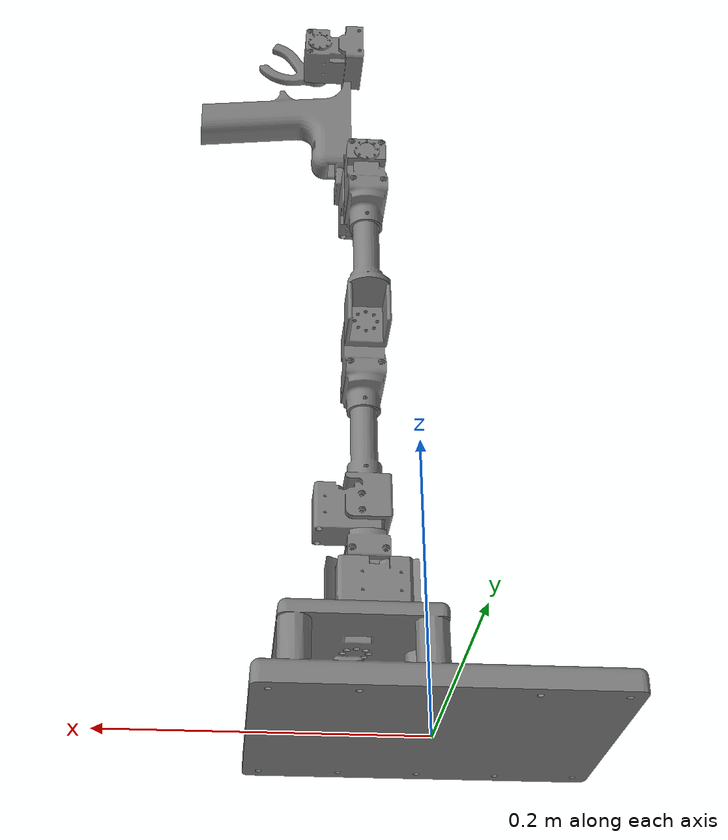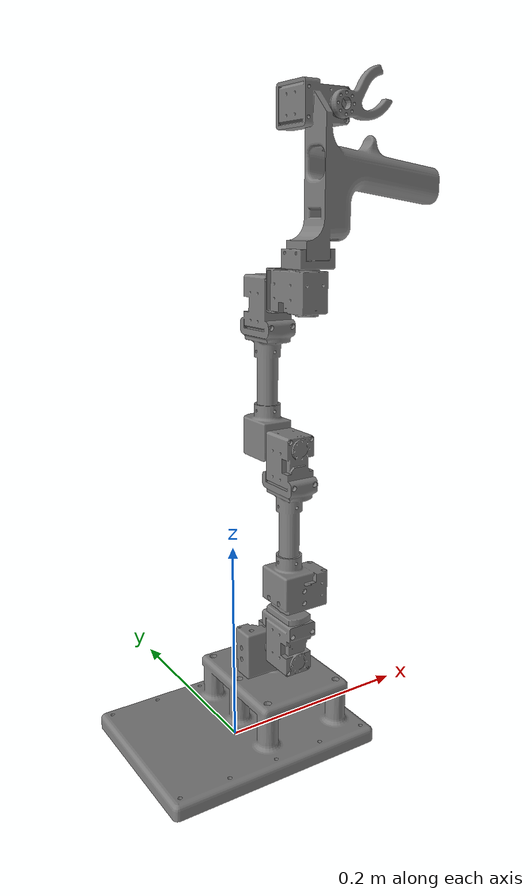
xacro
<?xml version="1.0"?>
<robot name="leader" xmlns:xacro="http://www.ros.org/wiki/xacro">
  <!-- Include the leader arm URDF -->
  <xacro:include filename="$(find leader_description)/urdf/leader.urdf.xacro"/>

  <!-- Launch arguments -->
  <xacro:arg name="port_name" default="/dev/dynamixel_leader"/>

  <xacro:leader />

  <xacro:macro name="leader_system" params="name port_name:=/dev/dynamixel_leader">
    <ros2_control name="${name}" type="system">
      <hardware>
        <plugin>dynamixel_hardware_interface/DynamixelHardware</plugin>
        <param name="port_name">${port_name}</param>
        <param name="baud_rate">1000000</param>
        <param name="error_timeout_ms">500</param>
        <param name="dynamixel_model_folder">/param/dxl_model</param>
        <param name="number_of_joints">7</param>
        <param name="number_of_transmissions">7</param>
        <param name="disable_torque_at_init">true</param>
        <param name="transmission_to_joint_matrix">
          1, 0, 0, 0, 0, 0, 0,
          0, 1, 0, 0, 0, 0, 0,
          0, 0, 1, 0, 0, 0, 0,
          0, 0, 0, 1, 0, 0, 0,
          0, 0, 0, 0, 1, 0, 0,
          0, 0, 0, 0, 0, 1, 0,
          0, 0, 0, 0, 0, 0, 1
        </param>
        <param name="joint_to_transmission_matrix">
          1, 0, 0, 0, 0, 0, 0,
          0, 1, 0, 0, 0, 0, 0,
          0, 0, 1, 0, 0, 0, 0,
          0, 0, 0, 1, 0, 0, 0,
          0, 0, 0, 0, 1, 0, 0,
          0, 0, 0, 0, 0, 1, 0,
          0, 0, 0, 0, 0, 0, 1
        </param>
        <param name="dynamixel_state_pub_msg_name">dynamixel_hardware_interface/dxl_state</param>
        <param name="get_dynamixel_data_srv_name">dynamixel_hardware_interface/get_dxl_data</param>
        <param name="set_dynamixel_data_srv_name">dynamixel_hardware_interface/set_dxl_data</param>
        <param name="reboot_dxl_srv_name">dynamixel_hardware_interface/reboot_dxl</param>
        <param name="set_dxl_torque_srv_name">dynamixel_hardware_interface/set_dxl_torque</param>
      </hardware>

      <joint name="shoulder_yaw_joint">
        <command_interface name="effort"/>
        <state_interface name="position"/>
        <state_interface name="velocity"/>
        <state_interface name="effort"/>
      </joint>
      <joint name="upper_shoulder_pitch_joint">
        <command_interface name="effort"/>
        <state_interface name="position"/>
        <state_interface name="velocity"/>
        <state_interface name="effort"/>
      </joint>
      <joint name="arm_yaw_joint">
        <command_interface name="effort"/>
        <state_interface name="position"/>
        <state_interface name="velocity"/>
        <state_interface name="effort"/>
      </joint>
      <joint name="forearm_pitch_joint">
        <command_interface name="effort"/>
        <state_interface name="position"/>
        <state_interface name="velocity"/>
        <state_interface name="effort"/>
      </joint>
      <joint name="wrist_pitch_joint">
        <command_interface name="effort"/>
        <state_interface name="position"/>
        <state_interface name="velocity"/>
        <state_interface name="effort"/>
      </joint>
      <joint name="palm_yaw_joint">
        <command_interface name="effort"/>
        <state_interface name="position"/>
        <state_interface name="velocity"/>
        <state_interface name="effort"/>
      </joint>
      <joint name="gripper_prismatic_joint">
        <command_interface name="effort"/>
        <state_interface name="position"/>
        <state_interface name="velocity"/>
        <state_interface name="effort"/>
      </joint>

      <gpio name="dxl1">
        <param name="type">dxl</param>
        <param name="ID">1</param>
        <command_interface name="Goal Current"/>
        <state_interface name="Present Position"/>
        <state_interface name="Present Velocity"/>
        <state_interface name="Present Current"/>
        <param name="Drive Mode">1</param>
        <param name="Operating Mode">0</param>
        <param name="Return Delay Time">0</param>
        <param name="Current Limit">400</param>
        <param name="Goal Current">0</param>
      </gpio>
      <gpio name="dxl2">
        <param name="type">dxl</param>
        <param name="ID">2</param>
        <command_interface name="Goal Current"/>
        <state_interface name="Present Position"/>
        <state_interface name="Present Velocity"/>
        <state_interface name="Present Current"/>
        <param name="Drive Mode">0</param>
        <param name="Operating Mode">0</param>
        <param name="Return Delay Time">0</param>
        <param name="Current Limit">400</param>
        <param name="Goal Current">0</param>
      </gpio>
      <gpio name="dxl3">
        <param name="type">dxl</param>
        <param name="ID">3</param>
        <command_interface name="Goal Current"/>
        <state_interface name="Present Position"/>
        <state_interface name="Present Velocity"/>
        <state_interface name="Present Current"/>
        <param name="Drive Mode">1</param>
        <param name="Operating Mode">0</param>
        <param name="Return Delay Time">0</param>
        <param name="Current Limit">400</param>
        <param name="Goal Current">0</param>
      </gpio>
      <gpio name="dxl4">
        <param name="type">dxl</param>
        <param name="ID">4</param>
        <command_interface name="Goal Current"/>
        <state_interface name="Present Position"/>
        <state_interface name="Present Velocity"/>
        <state_interface name="Present Current"/>
        <param name="Drive Mode">1</param>
        <param name="Operating Mode">0</param>
        <param name="Return Delay Time">0</param>
        <param name="Current Limit">400</param>
        <param name="Goal Current">0</param>
      </gpio>
      <gpio name="dxl5">
        <param name="type">dxl</param>
        <param name="ID">5</param>
        <command_interface name="Goal Current"/>
        <state_interface name="Present Position"/>
        <state_interface name="Present Velocity"/>
        <state_interface name="Present Current"/>
        <param name="Drive Mode">1</param>
        <param name="Operating Mode">0</param>
        <param name="Return Delay Time">0</param>
        <param name="Current Limit">400</param>
        <param name="Goal Current">0</param>
      </gpio>
      <gpio name="dxl6">
        <param name="type">dxl</param>
        <param name="ID">6</param>
        <command_interface name="Goal Current"/>
        <state_interface name="Present Position"/>
        <state_interface name="Present Velocity"/>
        <state_interface name="Present Current"/>
        <param name="Drive Mode">0</param>
        <param name="Operating Mode">0</param>
        <param name="Return Delay Time">0</param>
        <param name="Current Limit">400</param>
        <param name="Goal Current">0</param>
      </gpio>
      <gpio name="dxl7">
        <param name="type">dxl</param>
        <param name="ID">7</param>
        <command_interface name="Goal Current"/>
        <state_interface name="Present Position"/>
        <state_interface name="Present Velocity"/>
        <state_interface name="Present Current"/>
        <param name="Drive Mode">0</param>
        <param name="Operating Mode">0</param>
        <param name="Return Delay Time">0</param>
        <param name="Current Limit">200</param>
        <param name="Goal Current">0</param>
      </gpio>

    </ros2_control>
  </xacro:macro>

  <!-- single dynamixel system: all 7 motors, effort command (Goal Current) -->
  <xacro:leader_system name="leader_system" port_name="$(arg port_name)"/>
</robot>

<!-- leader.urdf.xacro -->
<robot xmlns:xacro="http://www.ros.org/wiki/xacro">
    <material name="grey">
        <color rgba="0.5 0.5 0.5 1.0" />
    </material>

    <xacro:macro name="leader" >
        <link name="base_link">
            <visual>
                <geometry>
                    <mesh filename="package://leader_description/meshes/Base_link.STL" />
                </geometry>
                <material name="grey" />
            </visual>
            <collision>
                <geometry>
                    <mesh filename="package://leader_description/meshes/Base_link.STL" />
                </geometry>
            </collision>
            <inertial>
                <mass value="0.760315" />
                <origin xyz="0.011296 -0.000093 0.017421" rpy="0 0 0" />
                <inertia ixx="0.001892" ixy="-0.000004" ixz="0.000251"
                        iyy="0.003009" iyz="-0.000002"
                        izz="0.004372" />
            </inertial>
        </link>

        <joint name="shoulder_yaw_joint" type="revolute">
            <parent link="base_link" />
            <child link="shoulder_link" />
            <origin xyz="0.045 0.000 0.073" rpy="0 0 0" />
            <axis xyz="0 0 -1" />
            <limit effort="10" velocity="3.0" lower="-3.14" upper="3.14" />
        </joint>

        <link name="shoulder_link">
            <visual>
                <geometry>
                    <mesh filename="package://leader_description/meshes/Shoulder_link.STL" />
                </geometry>
                <material name="grey" />
            </visual>
            <collision>
                <geometry>
                    <mesh filename="package://leader_description/meshes/Shoulder_link.STL" />
                </geometry>
            </collision>
            <inertial>
                <mass value="0.104932" />
                <origin xyz="-0.011744 -0.003190 0.018889" rpy="0 0 0" />
                <inertia ixx="0.000022" ixy="0.000000" ixz="0.0000000"
                        iyy="0.000036" iyz="0.000000"
                        izz="0.000034" />
            </inertial>
        </link>

        <joint name="upper_shoulder_pitch_joint" type="revolute">
            <parent link="shoulder_link" />
            <child link="upper_shoulder_link" />
            <origin xyz="-0.012 -0.026 0.026" rpy="0 0 0" />
            <axis xyz="0 -1 0" />
            <limit effort="10" velocity="3.0" lower="-1.70" upper="1.70" />
        </joint>

        <link name="upper_shoulder_link">
            <visual>
                <geometry>
                    <mesh filename="package://leader_description/meshes/Upper_shoulder_link.STL" />
                </geometry>
                <material name="grey" />
            </visual>
            <collision>
                <geometry>
                    <mesh filename="package://leader_description/meshes/Upper_shoulder_link.STL" />
                </geometry>
            </collision>
            <inertial>
                <mass value="0.098298" />
                <origin xyz="0.000000 -0.018677 0.016030" rpy="0 0 0" />
                <inertia ixx="0.000037" ixy="0.000000" ixz="0.000000"
                        iyy="0.000032" iyz="0.000000"
                        izz="0.000018" />
            </inertial>
        </link>

        <joint name="arm_yaw_joint" type="revolute">
            <parent link="upper_shoulder_link" />
            <child link="arm_link" />
            <origin xyz="0.000 -0.019 0.048" rpy="0 0 0" />
            <axis xyz="0 0 -1" />
            <limit effort="10" velocity="3.0" lower="-3.14" upper="3.14" />
        </joint>

        <link name="arm_link">
            <visual>
                <geometry>
                    <mesh filename="package://leader_description/meshes/Arm_link.STL" />
                </geometry>
                <material name="grey" />
            </visual>
            <collision>
                <geometry>
                    <mesh filename="package://leader_description/meshes/Arm_link.STL" />
                </geometry>
            </collision>
            <inertial>
                <mass value="0.198517" />
                <origin xyz="0.004663 0.000160 0.082369" rpy="0 0 0" />
                <inertia ixx="0.000775" ixy="0.000000" ixz="-0.000059"
                        iyy="0.000786" iyz="0.000002"
                        izz="0.000047" />
            </inertial>
        </link>

        <joint name="forearm_pitch_joint" type="revolute">
            <parent link="arm_link" />
            <child link="forearm_link" />
            <origin xyz="0.000 0.019 0.159" rpy="0 0 0" />
            <axis xyz="0 -1 0" />
            <limit effort="10" velocity="3.0" lower="-2.33" upper="2.4" />
        </joint>

        <link name="forearm_link">
            <visual>
                <geometry>
                    <mesh filename="package://leader_description/meshes/Forearm_link.STL" />
                </geometry>
                <material name="grey" />
            </visual>
            <collision>
                <geometry>
                    <mesh filename="package://leader_description/meshes/Forearm_link.STL" />
                </geometry>
            </collision>
            <inertial>
                <mass value="0.120758" />
                <origin xyz="0.000000 0.016998 0.099892" rpy="0 0 0" />
                <inertia ixx="0.000231" ixy="0.000000" ixz="0.000000"
                        iyy="0.000226" iyz="0.000002"
                        izz="0.000021" />
            </inertial>
        </link>

        <joint name="wrist_pitch_joint" type="revolute">
            <parent link="forearm_link" />
            <child link="wrist_link" />
            <origin xyz="0.000 -0.002 0.135" rpy="0 0 0" />
            <axis xyz="0 1 0" />
            <limit effort="10" velocity="3.0" lower="-1.86" upper="1.69" />
        </joint>

        <link name="wrist_link">
            <visual>
                <geometry>
                    <mesh filename="package://leader_description/meshes/Wrist_link.STL" />
                </geometry>
                <material name="grey" />
            </visual>
            <collision>
                <geometry>
                    <mesh filename="package://leader_description/meshes/Wrist_link.STL" />
                </geometry>
            </collision>
            <inertial>
                <mass value="0.091000" />
                <origin xyz="0.000000 -0.027250 0.000360" rpy="0 0 0" />
                <inertia ixx="0.000028" ixy="0.000000" ixz="0.000000"
                        iyy="0.000015" iyz="0.000000"
                        izz="0.000024" />
            </inertial>
        </link>

        <joint name="palm_yaw_joint" type="revolute">
            <parent link="wrist_link" />
            <child link="palm_link" />
            <origin xyz="0.000 -0.041 0.019" rpy="0 0 0" />
            <axis xyz="0 0 1" />
            <limit effort="10" velocity="3.0" lower="-3.14" upper="3.14" />
        </joint>

        <link name="palm_link">
            <visual>
                <geometry>
                    <mesh filename="package://leader_description/meshes/Palm_link.STL" />
                </geometry>
                <material name="grey" />
            </visual>
            <collision>
                <geometry>
                    <mesh filename="package://leader_description/meshes/Palm_link.STL" />
                </geometry>
            </collision>
            <inertial>
                <mass value="0.167758" />
                <origin xyz="0.025752 0.013110 0.095377" rpy="0 0 0" />
                <inertia ixx="0.000295" ixy="-0.000011" ixz="-0.000004"
                        iyy="0.000363" iyz="0.000062"
                        izz="0.000136" />
            </inertial>
        </link>

        <joint name="gripper_prismatic_joint" type="revolute">
            <parent link="palm_link" />
            <child link="gripper_link" />
            <origin xyz="0.033 0.004 0.127" rpy="0 0 0" />
            <axis xyz="0 -1 0" />
            <limit effort="1" velocity="4.8" lower="-0.4" upper="0.0" />
        </joint>

        <link name="gripper_link">
            <visual>
                <geometry>
                    <mesh filename="package://leader_description/meshes/Gripper_link.STL" />
                </geometry>
                <material name="grey" />
            </visual>
            <collision>
                <geometry>
                    <mesh filename="package://leader_description/meshes/Gripper_link.STL" />
                </geometry>
            </collision>
            <inertial>
                <mass value="0.006201" />
                <origin xyz="0.017052 -0.003500 0.004139" rpy="0 0 0" />
                <inertia ixx="0.000001" ixy="0.000000" ixz="0.000000"
                        iyy="0.000002" iyz="0.000000"
                        izz="0.000001" />
            </inertial>
        </link>

        <joint name="ee_joint" type="fixed">
            <parent link="palm_link" />
            <child link="ee_link" />
            <origin xyz="0.060 0.000 0.135" rpy="0 0 0" />
        </joint>

        <link name="ee_link" />
    </xacro:macro>

</robot>
